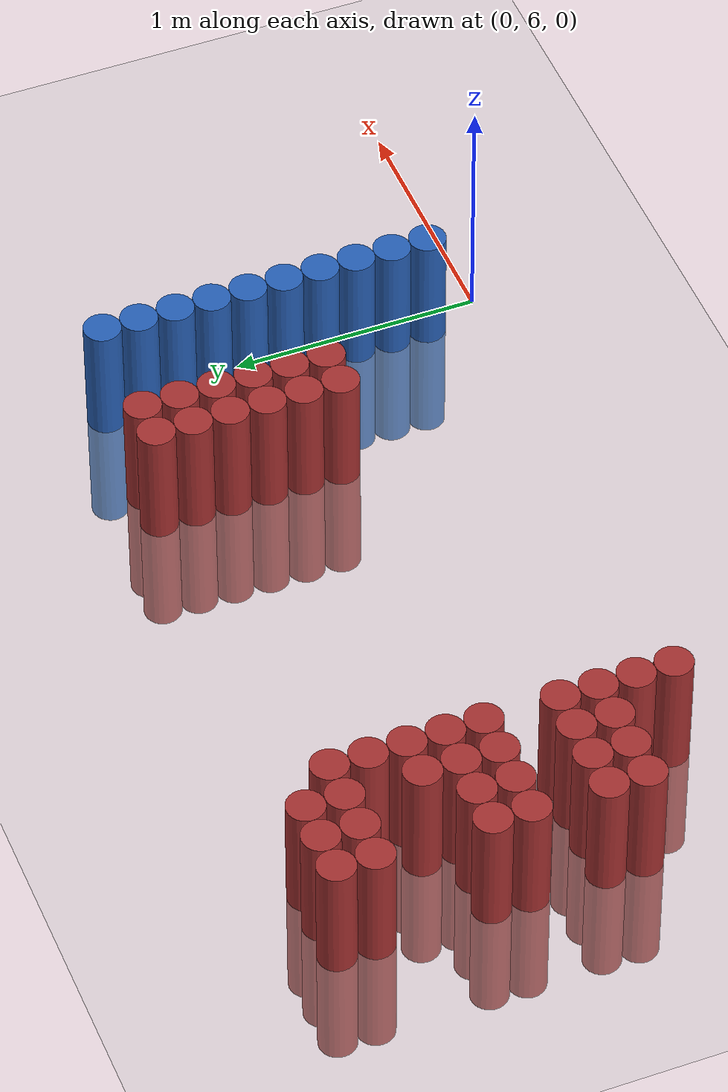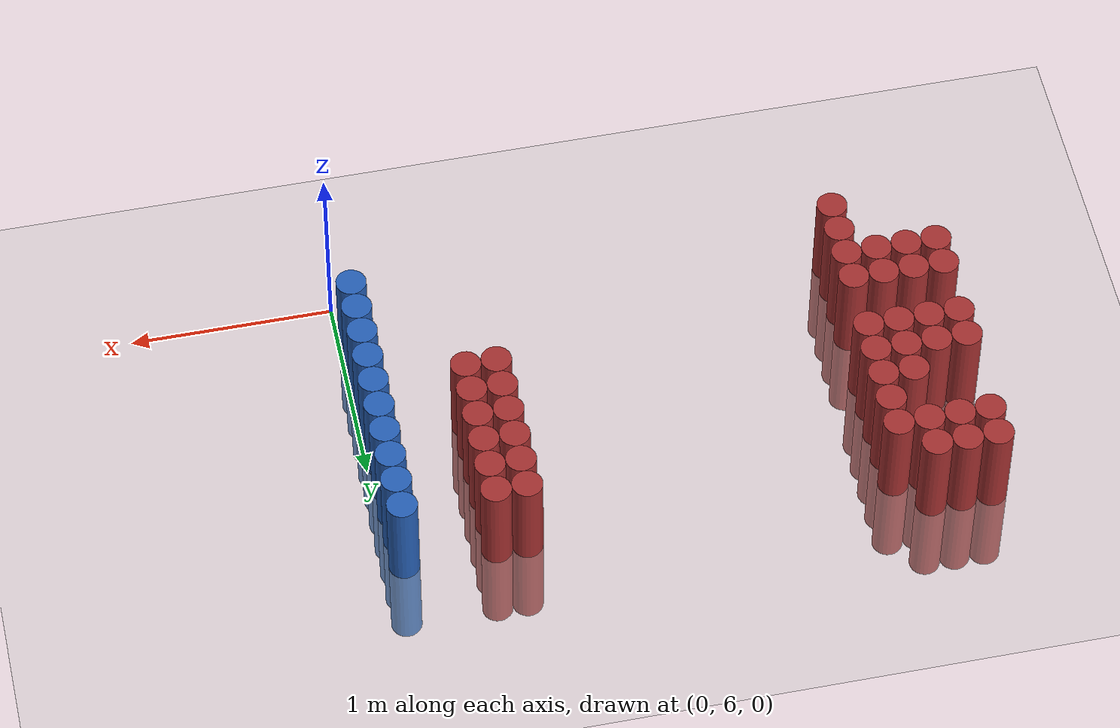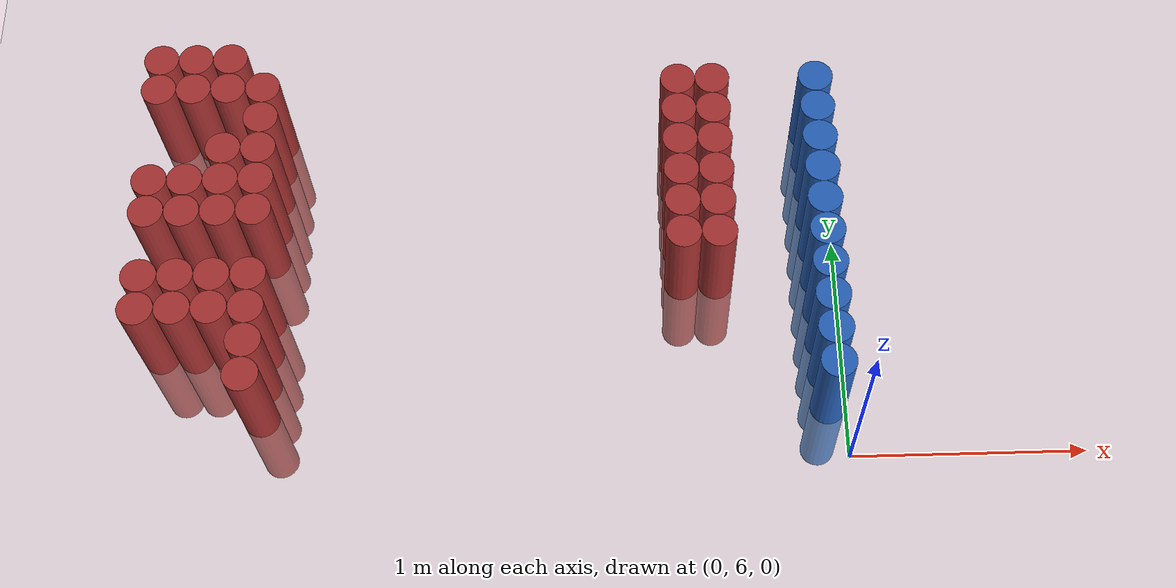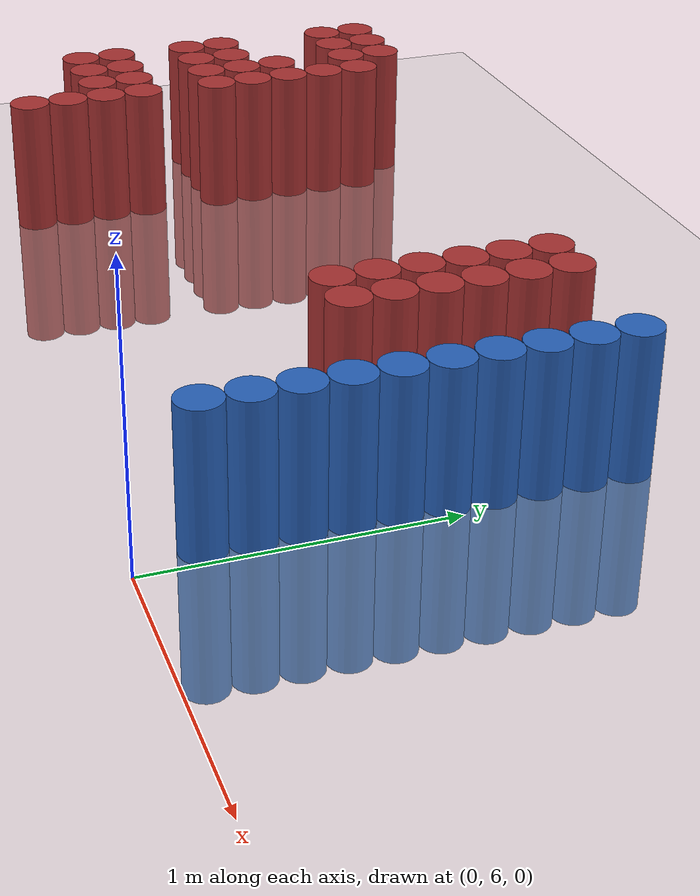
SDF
<sdf version="1.6">
 <world name="default">
  <model name="ground_plane">
   <static>1</static>
   <link name="link">
    <collision name="collision">
     <geometry><plane><normal>0 0 1</normal><size>100 100</size></plane></geometry>
     <surface><friction><ode><mu>100</mu><mu2>50</mu2></ode></friction></surface>
    </collision>
    <visual name="visual">
     <cast_shadows>0</cast_shadows>
     <geometry><plane><normal>0 0 1</normal><size>100 100</size></plane></geometry>
     <material>
      <script><uri>file://media/materials/scripts/gazebo.material</uri><name>Gazebo/Grey</name></script>
     </material>
    </visual>
   </link>
  </model>
  <model name="unit_cylinder_224">
   <static>1</static>
   <pose>-2.925000 6.525000 0.000000 0.000000 0.000000 0.000000</pose>
   <link name="link">
    <inertial>
     <mass>1</mass>
     <inertia><ixx>0.145833</ixx><ixy>0</ixy><ixz>0</ixz><iyy>0.145833</iyy><iyz>0</iyz><izz>0.125</izz></inertia>
    </inertial>
    <collision name="collision">
     <geometry><cylinder><radius>0.075000</radius><length>1</length></cylinder></geometry>
    </collision>
    <visual name="visual">
     <geometry><cylinder><radius>0.075000</radius><length>1</length></cylinder></geometry>
     <material>
      <ambient>0.648000 0.192000 0.192000 1</ambient>
      <diffuse>0.648000 0.192000 0.192000 1</diffuse>
     </material>
     <material>
      <script><name>Gazebo/Grey</name><uri>file://media/materials/scripts/gazebo.material</uri></script>
     </material>
    </visual>
   </link>
  </model>
  <model name="unit_cylinder_225">
   <static>1</static>
   <pose>-2.925000 6.675000 0.000000 0.000000 0.000000 0.000000</pose>
   <link name="link">
    <inertial>
     <mass>1</mass>
     <inertia><ixx>0.145833</ixx><ixy>0</ixy><ixz>0</ixz><iyy>0.145833</iyy><iyz>0</iyz><izz>0.125</izz></inertia>
    </inertial>
    <collision name="collision">
     <geometry><cylinder><radius>0.075000</radius><length>1</length></cylinder></geometry>
    </collision>
    <visual name="visual">
     <geometry><cylinder><radius>0.075000</radius><length>1</length></cylinder></geometry>
     <material>
      <ambient>0.648000 0.192000 0.192000 1</ambient>
      <diffuse>0.648000 0.192000 0.192000 1</diffuse>
     </material>
     <material>
      <script><name>Gazebo/Grey</name><uri>file://media/materials/scripts/gazebo.material</uri></script>
     </material>
    </visual>
   </link>
  </model>
  <model name="unit_cylinder_226">
   <static>1</static>
   <pose>-2.925000 6.975000 0.000000 0.000000 0.000000 0.000000</pose>
   <link name="link">
    <inertial>
     <mass>1</mass>
     <inertia><ixx>0.145833</ixx><ixy>0</ixy><ixz>0</ixz><iyy>0.145833</iyy><iyz>0</iyz><izz>0.125</izz></inertia>
    </inertial>
    <collision name="collision">
     <geometry><cylinder><radius>0.075000</radius><length>1</length></cylinder></geometry>
    </collision>
    <visual name="visual">
     <geometry><cylinder><radius>0.075000</radius><length>1</length></cylinder></geometry>
     <material>
      <ambient>0.648000 0.192000 0.192000 1</ambient>
      <diffuse>0.648000 0.192000 0.192000 1</diffuse>
     </material>
     <material>
      <script><name>Gazebo/Grey</name><uri>file://media/materials/scripts/gazebo.material</uri></script>
     </material>
    </visual>
   </link>
  </model>
  <model name="unit_cylinder_227">
   <static>1</static>
   <pose>-2.925000 7.125000 0.000000 0.000000 0.000000 0.000000</pose>
   <link name="link">
    <inertial>
     <mass>1</mass>
     <inertia><ixx>0.145833</ixx><ixy>0</ixy><ixz>0</ixz><iyy>0.145833</iyy><iyz>0</iyz><izz>0.125</izz></inertia>
    </inertial>
    <collision name="collision">
     <geometry><cylinder><radius>0.075000</radius><length>1</length></cylinder></geometry>
    </collision>
    <visual name="visual">
     <geometry><cylinder><radius>0.075000</radius><length>1</length></cylinder></geometry>
     <material>
      <ambient>0.648000 0.192000 0.192000 1</ambient>
      <diffuse>0.648000 0.192000 0.192000 1</diffuse>
     </material>
     <material>
      <script><name>Gazebo/Grey</name><uri>file://media/materials/scripts/gazebo.material</uri></script>
     </material>
    </visual>
   </link>
  </model>
  <model name="unit_cylinder_228">
   <static>1</static>
   <pose>-2.925000 7.575000 0.000000 0.000000 0.000000 0.000000</pose>
   <link name="link">
    <inertial>
     <mass>1</mass>
     <inertia><ixx>0.145833</ixx><ixy>0</ixy><ixz>0</ixz><iyy>0.145833</iyy><iyz>0</iyz><izz>0.125</izz></inertia>
    </inertial>
    <collision name="collision">
     <geometry><cylinder><radius>0.075000</radius><length>1</length></cylinder></geometry>
    </collision>
    <visual name="visual">
     <geometry><cylinder><radius>0.075000</radius><length>1</length></cylinder></geometry>
     <material>
      <ambient>0.648000 0.192000 0.192000 1</ambient>
      <diffuse>0.648000 0.192000 0.192000 1</diffuse>
     </material>
     <material>
      <script><name>Gazebo/Grey</name><uri>file://media/materials/scripts/gazebo.material</uri></script>
     </material>
    </visual>
   </link>
  </model>
  <model name="unit_cylinder_229">
   <static>1</static>
   <pose>-2.925000 7.725000 0.000000 0.000000 0.000000 0.000000</pose>
   <link name="link">
    <inertial>
     <mass>1</mass>
     <inertia><ixx>0.145833</ixx><ixy>0</ixy><ixz>0</ixz><iyy>0.145833</iyy><iyz>0</iyz><izz>0.125</izz></inertia>
    </inertial>
    <collision name="collision">
     <geometry><cylinder><radius>0.075000</radius><length>1</length></cylinder></geometry>
    </collision>
    <visual name="visual">
     <geometry><cylinder><radius>0.075000</radius><length>1</length></cylinder></geometry>
     <material>
      <ambient>0.648000 0.192000 0.192000 1</ambient>
      <diffuse>0.648000 0.192000 0.192000 1</diffuse>
     </material>
     <material>
      <script><name>Gazebo/Grey</name><uri>file://media/materials/scripts/gazebo.material</uri></script>
     </material>
    </visual>
   </link>
  </model>
  <model name="unit_cylinder_236">
   <static>1</static>
   <pose>-2.775000 6.525000 0.000000 0.000000 0.000000 0.000000</pose>
   <link name="link">
    <inertial>
     <mass>1</mass>
     <inertia><ixx>0.145833</ixx><ixy>0</ixy><ixz>0</ixz><iyy>0.145833</iyy><iyz>0</iyz><izz>0.125</izz></inertia>
    </inertial>
    <collision name="collision">
     <geometry><cylinder><radius>0.075000</radius><length>1</length></cylinder></geometry>
    </collision>
    <visual name="visual">
     <geometry><cylinder><radius>0.075000</radius><length>1</length></cylinder></geometry>
     <material>
      <ambient>0.648000 0.192000 0.192000 1</ambient>
      <diffuse>0.648000 0.192000 0.192000 1</diffuse>
     </material>
     <material>
      <script><name>Gazebo/Grey</name><uri>file://media/materials/scripts/gazebo.material</uri></script>
     </material>
    </visual>
   </link>
  </model>
  <model name="unit_cylinder_237">
   <static>1</static>
   <pose>-2.775000 6.675000 0.000000 0.000000 0.000000 0.000000</pose>
   <link name="link">
    <inertial>
     <mass>1</mass>
     <inertia><ixx>0.145833</ixx><ixy>0</ixy><ixz>0</ixz><iyy>0.145833</iyy><iyz>0</iyz><izz>0.125</izz></inertia>
    </inertial>
    <collision name="collision">
     <geometry><cylinder><radius>0.075000</radius><length>1</length></cylinder></geometry>
    </collision>
    <visual name="visual">
     <geometry><cylinder><radius>0.075000</radius><length>1</length></cylinder></geometry>
     <material>
      <ambient>0.648000 0.192000 0.192000 1</ambient>
      <diffuse>0.648000 0.192000 0.192000 1</diffuse>
     </material>
     <material>
      <script><name>Gazebo/Grey</name><uri>file://media/materials/scripts/gazebo.material</uri></script>
     </material>
    </visual>
   </link>
  </model>
  <model name="unit_cylinder_238">
   <static>1</static>
   <pose>-2.775000 6.975000 0.000000 0.000000 0.000000 0.000000</pose>
   <link name="link">
    <inertial>
     <mass>1</mass>
     <inertia><ixx>0.145833</ixx><ixy>0</ixy><ixz>0</ixz><iyy>0.145833</iyy><iyz>0</iyz><izz>0.125</izz></inertia>
    </inertial>
    <collision name="collision">
     <geometry><cylinder><radius>0.075000</radius><length>1</length></cylinder></geometry>
    </collision>
    <visual name="visual">
     <geometry><cylinder><radius>0.075000</radius><length>1</length></cylinder></geometry>
     <material>
      <ambient>0.648000 0.192000 0.192000 1</ambient>
      <diffuse>0.648000 0.192000 0.192000 1</diffuse>
     </material>
     <material>
      <script><name>Gazebo/Grey</name><uri>file://media/materials/scripts/gazebo.material</uri></script>
     </material>
    </visual>
   </link>
  </model>
  <model name="unit_cylinder_239">
   <static>1</static>
   <pose>-2.775000 7.125000 0.000000 0.000000 0.000000 0.000000</pose>
   <link name="link">
    <inertial>
     <mass>1</mass>
     <inertia><ixx>0.145833</ixx><ixy>0</ixy><ixz>0</ixz><iyy>0.145833</iyy><iyz>0</iyz><izz>0.125</izz></inertia>
    </inertial>
    <collision name="collision">
     <geometry><cylinder><radius>0.075000</radius><length>1</length></cylinder></geometry>
    </collision>
    <visual name="visual">
     <geometry><cylinder><radius>0.075000</radius><length>1</length></cylinder></geometry>
     <material>
      <ambient>0.648000 0.192000 0.192000 1</ambient>
      <diffuse>0.648000 0.192000 0.192000 1</diffuse>
     </material>
     <material>
      <script><name>Gazebo/Grey</name><uri>file://media/materials/scripts/gazebo.material</uri></script>
     </material>
    </visual>
   </link>
  </model>
  <model name="unit_cylinder_240">
   <static>1</static>
   <pose>-2.775000 7.575000 0.000000 0.000000 0.000000 0.000000</pose>
   <link name="link">
    <inertial>
     <mass>1</mass>
     <inertia><ixx>0.145833</ixx><ixy>0</ixy><ixz>0</ixz><iyy>0.145833</iyy><iyz>0</iyz><izz>0.125</izz></inertia>
    </inertial>
    <collision name="collision">
     <geometry><cylinder><radius>0.075000</radius><length>1</length></cylinder></geometry>
    </collision>
    <visual name="visual">
     <geometry><cylinder><radius>0.075000</radius><length>1</length></cylinder></geometry>
     <material>
      <ambient>0.648000 0.192000 0.192000 1</ambient>
      <diffuse>0.648000 0.192000 0.192000 1</diffuse>
     </material>
     <material>
      <script><name>Gazebo/Grey</name><uri>file://media/materials/scripts/gazebo.material</uri></script>
     </material>
    </visual>
   </link>
  </model>
  <model name="unit_cylinder_241">
   <static>1</static>
   <pose>-2.775000 7.725000 0.000000 0.000000 0.000000 0.000000</pose>
   <link name="link">
    <inertial>
     <mass>1</mass>
     <inertia><ixx>0.145833</ixx><ixy>0</ixy><ixz>0</ixz><iyy>0.145833</iyy><iyz>0</iyz><izz>0.125</izz></inertia>
    </inertial>
    <collision name="collision">
     <geometry><cylinder><radius>0.075000</radius><length>1</length></cylinder></geometry>
    </collision>
    <visual name="visual">
     <geometry><cylinder><radius>0.075000</radius><length>1</length></cylinder></geometry>
     <material>
      <ambient>0.648000 0.192000 0.192000 1</ambient>
      <diffuse>0.648000 0.192000 0.192000 1</diffuse>
     </material>
     <material>
      <script><name>Gazebo/Grey</name><uri>file://media/materials/scripts/gazebo.material</uri></script>
     </material>
    </visual>
   </link>
  </model>
  <model name="unit_cylinder_248">
   <static>1</static>
   <pose>-2.625000 6.525000 0.000000 0.000000 0.000000 0.000000</pose>
   <link name="link">
    <inertial>
     <mass>1</mass>
     <inertia><ixx>0.145833</ixx><ixy>0</ixy><ixz>0</ixz><iyy>0.145833</iyy><iyz>0</iyz><izz>0.125</izz></inertia>
    </inertial>
    <collision name="collision">
     <geometry><cylinder><radius>0.075000</radius><length>1</length></cylinder></geometry>
    </collision>
    <visual name="visual">
     <geometry><cylinder><radius>0.075000</radius><length>1</length></cylinder></geometry>
     <material>
      <ambient>0.648000 0.192000 0.192000 1</ambient>
      <diffuse>0.648000 0.192000 0.192000 1</diffuse>
     </material>
     <material>
      <script><name>Gazebo/Grey</name><uri>file://media/materials/scripts/gazebo.material</uri></script>
     </material>
    </visual>
   </link>
  </model>
  <model name="unit_cylinder_249">
   <static>1</static>
   <pose>-2.625000 6.675000 0.000000 0.000000 0.000000 0.000000</pose>
   <link name="link">
    <inertial>
     <mass>1</mass>
     <inertia><ixx>0.145833</ixx><ixy>0</ixy><ixz>0</ixz><iyy>0.145833</iyy><iyz>0</iyz><izz>0.125</izz></inertia>
    </inertial>
    <collision name="collision">
     <geometry><cylinder><radius>0.075000</radius><length>1</length></cylinder></geometry>
    </collision>
    <visual name="visual">
     <geometry><cylinder><radius>0.075000</radius><length>1</length></cylinder></geometry>
     <material>
      <ambient>0.648000 0.192000 0.192000 1</ambient>
      <diffuse>0.648000 0.192000 0.192000 1</diffuse>
     </material>
     <material>
      <script><name>Gazebo/Grey</name><uri>file://media/materials/scripts/gazebo.material</uri></script>
     </material>
    </visual>
   </link>
  </model>
  <model name="unit_cylinder_250">
   <static>1</static>
   <pose>-2.625000 6.975000 0.000000 0.000000 0.000000 0.000000</pose>
   <link name="link">
    <inertial>
     <mass>1</mass>
     <inertia><ixx>0.145833</ixx><ixy>0</ixy><ixz>0</ixz><iyy>0.145833</iyy><iyz>0</iyz><izz>0.125</izz></inertia>
    </inertial>
    <collision name="collision">
     <geometry><cylinder><radius>0.075000</radius><length>1</length></cylinder></geometry>
    </collision>
    <visual name="visual">
     <geometry><cylinder><radius>0.075000</radius><length>1</length></cylinder></geometry>
     <material>
      <ambient>0.648000 0.192000 0.192000 1</ambient>
      <diffuse>0.648000 0.192000 0.192000 1</diffuse>
     </material>
     <material>
      <script><name>Gazebo/Grey</name><uri>file://media/materials/scripts/gazebo.material</uri></script>
     </material>
    </visual>
   </link>
  </model>
  <model name="unit_cylinder_251">
   <static>1</static>
   <pose>-2.625000 7.125000 0.000000 0.000000 0.000000 0.000000</pose>
   <link name="link">
    <inertial>
     <mass>1</mass>
     <inertia><ixx>0.145833</ixx><ixy>0</ixy><ixz>0</ixz><iyy>0.145833</iyy><iyz>0</iyz><izz>0.125</izz></inertia>
    </inertial>
    <collision name="collision">
     <geometry><cylinder><radius>0.075000</radius><length>1</length></cylinder></geometry>
    </collision>
    <visual name="visual">
     <geometry><cylinder><radius>0.075000</radius><length>1</length></cylinder></geometry>
     <material>
      <ambient>0.648000 0.192000 0.192000 1</ambient>
      <diffuse>0.648000 0.192000 0.192000 1</diffuse>
     </material>
     <material>
      <script><name>Gazebo/Grey</name><uri>file://media/materials/scripts/gazebo.material</uri></script>
     </material>
    </visual>
   </link>
  </model>
  <model name="unit_cylinder_252">
   <static>1</static>
   <pose>-2.625000 7.275000 0.000000 0.000000 0.000000 0.000000</pose>
   <link name="link">
    <inertial>
     <mass>1</mass>
     <inertia><ixx>0.145833</ixx><ixy>0</ixy><ixz>0</ixz><iyy>0.145833</iyy><iyz>0</iyz><izz>0.125</izz></inertia>
    </inertial>
    <collision name="collision">
     <geometry><cylinder><radius>0.075000</radius><length>1</length></cylinder></geometry>
    </collision>
    <visual name="visual">
     <geometry><cylinder><radius>0.075000</radius><length>1</length></cylinder></geometry>
     <material>
      <ambient>0.648000 0.192000 0.192000 1</ambient>
      <diffuse>0.648000 0.192000 0.192000 1</diffuse>
     </material>
     <material>
      <script><name>Gazebo/Grey</name><uri>file://media/materials/scripts/gazebo.material</uri></script>
     </material>
    </visual>
   </link>
  </model>
  <model name="unit_cylinder_253">
   <static>1</static>
   <pose>-2.625000 7.575000 0.000000 0.000000 0.000000 0.000000</pose>
   <link name="link">
    <inertial>
     <mass>1</mass>
     <inertia><ixx>0.145833</ixx><ixy>0</ixy><ixz>0</ixz><iyy>0.145833</iyy><iyz>0</iyz><izz>0.125</izz></inertia>
    </inertial>
    <collision name="collision">
     <geometry><cylinder><radius>0.075000</radius><length>1</length></cylinder></geometry>
    </collision>
    <visual name="visual">
     <geometry><cylinder><radius>0.075000</radius><length>1</length></cylinder></geometry>
     <material>
      <ambient>0.648000 0.192000 0.192000 1</ambient>
      <diffuse>0.648000 0.192000 0.192000 1</diffuse>
     </material>
     <material>
      <script><name>Gazebo/Grey</name><uri>file://media/materials/scripts/gazebo.material</uri></script>
     </material>
    </visual>
   </link>
  </model>
  <model name="unit_cylinder_254">
   <static>1</static>
   <pose>-2.625000 7.725000 0.000000 0.000000 0.000000 0.000000</pose>
   <link name="link">
    <inertial>
     <mass>1</mass>
     <inertia><ixx>0.145833</ixx><ixy>0</ixy><ixz>0</ixz><iyy>0.145833</iyy><iyz>0</iyz><izz>0.125</izz></inertia>
    </inertial>
    <collision name="collision">
     <geometry><cylinder><radius>0.075000</radius><length>1</length></cylinder></geometry>
    </collision>
    <visual name="visual">
     <geometry><cylinder><radius>0.075000</radius><length>1</length></cylinder></geometry>
     <material>
      <ambient>0.648000 0.192000 0.192000 1</ambient>
      <diffuse>0.648000 0.192000 0.192000 1</diffuse>
     </material>
     <material>
      <script><name>Gazebo/Grey</name><uri>file://media/materials/scripts/gazebo.material</uri></script>
     </material>
    </visual>
   </link>
  </model>
  <model name="unit_cylinder_261">
   <static>1</static>
   <pose>-2.475000 6.225000 0.000000 0.000000 0.000000 0.000000</pose>
   <link name="link">
    <inertial>
     <mass>1</mass>
     <inertia><ixx>0.145833</ixx><ixy>0</ixy><ixz>0</ixz><iyy>0.145833</iyy><iyz>0</iyz><izz>0.125</izz></inertia>
    </inertial>
    <collision name="collision">
     <geometry><cylinder><radius>0.075000</radius><length>1</length></cylinder></geometry>
    </collision>
    <visual name="visual">
     <geometry><cylinder><radius>0.075000</radius><length>1</length></cylinder></geometry>
     <material>
      <ambient>0.648000 0.192000 0.192000 1</ambient>
      <diffuse>0.648000 0.192000 0.192000 1</diffuse>
     </material>
     <material>
      <script><name>Gazebo/Grey</name><uri>file://media/materials/scripts/gazebo.material</uri></script>
     </material>
    </visual>
   </link>
  </model>
  <model name="unit_cylinder_262">
   <static>1</static>
   <pose>-2.475000 6.375000 0.000000 0.000000 0.000000 0.000000</pose>
   <link name="link">
    <inertial>
     <mass>1</mass>
     <inertia><ixx>0.145833</ixx><ixy>0</ixy><ixz>0</ixz><iyy>0.145833</iyy><iyz>0</iyz><izz>0.125</izz></inertia>
    </inertial>
    <collision name="collision">
     <geometry><cylinder><radius>0.075000</radius><length>1</length></cylinder></geometry>
    </collision>
    <visual name="visual">
     <geometry><cylinder><radius>0.075000</radius><length>1</length></cylinder></geometry>
     <material>
      <ambient>0.648000 0.192000 0.192000 1</ambient>
      <diffuse>0.648000 0.192000 0.192000 1</diffuse>
     </material>
     <material>
      <script><name>Gazebo/Grey</name><uri>file://media/materials/scripts/gazebo.material</uri></script>
     </material>
    </visual>
   </link>
  </model>
  <model name="unit_cylinder_263">
   <static>1</static>
   <pose>-2.475000 6.525000 0.000000 0.000000 0.000000 0.000000</pose>
   <link name="link">
    <inertial>
     <mass>1</mass>
     <inertia><ixx>0.145833</ixx><ixy>0</ixy><ixz>0</ixz><iyy>0.145833</iyy><iyz>0</iyz><izz>0.125</izz></inertia>
    </inertial>
    <collision name="collision">
     <geometry><cylinder><radius>0.075000</radius><length>1</length></cylinder></geometry>
    </collision>
    <visual name="visual">
     <geometry><cylinder><radius>0.075000</radius><length>1</length></cylinder></geometry>
     <material>
      <ambient>0.648000 0.192000 0.192000 1</ambient>
      <diffuse>0.648000 0.192000 0.192000 1</diffuse>
     </material>
     <material>
      <script><name>Gazebo/Grey</name><uri>file://media/materials/scripts/gazebo.material</uri></script>
     </material>
    </visual>
   </link>
  </model>
  <model name="unit_cylinder_264">
   <static>1</static>
   <pose>-2.475000 6.675000 0.000000 0.000000 0.000000 0.000000</pose>
   <link name="link">
    <inertial>
     <mass>1</mass>
     <inertia><ixx>0.145833</ixx><ixy>0</ixy><ixz>0</ixz><iyy>0.145833</iyy><iyz>0</iyz><izz>0.125</izz></inertia>
    </inertial>
    <collision name="collision">
     <geometry><cylinder><radius>0.075000</radius><length>1</length></cylinder></geometry>
    </collision>
    <visual name="visual">
     <geometry><cylinder><radius>0.075000</radius><length>1</length></cylinder></geometry>
     <material>
      <ambient>0.648000 0.192000 0.192000 1</ambient>
      <diffuse>0.648000 0.192000 0.192000 1</diffuse>
     </material>
     <material>
      <script><name>Gazebo/Grey</name><uri>file://media/materials/scripts/gazebo.material</uri></script>
     </material>
    </visual>
   </link>
  </model>
  <model name="unit_cylinder_265">
   <static>1</static>
   <pose>-2.475000 6.975000 0.000000 0.000000 0.000000 0.000000</pose>
   <link name="link">
    <inertial>
     <mass>1</mass>
     <inertia><ixx>0.145833</ixx><ixy>0</ixy><ixz>0</ixz><iyy>0.145833</iyy><iyz>0</iyz><izz>0.125</izz></inertia>
    </inertial>
    <collision name="collision">
     <geometry><cylinder><radius>0.075000</radius><length>1</length></cylinder></geometry>
    </collision>
    <visual name="visual">
     <geometry><cylinder><radius>0.075000</radius><length>1</length></cylinder></geometry>
     <material>
      <ambient>0.648000 0.192000 0.192000 1</ambient>
      <diffuse>0.648000 0.192000 0.192000 1</diffuse>
     </material>
     <material>
      <script><name>Gazebo/Grey</name><uri>file://media/materials/scripts/gazebo.material</uri></script>
     </material>
    </visual>
   </link>
  </model>
  <model name="unit_cylinder_266">
   <static>1</static>
   <pose>-2.475000 7.125000 0.000000 0.000000 0.000000 0.000000</pose>
   <link name="link">
    <inertial>
     <mass>1</mass>
     <inertia><ixx>0.145833</ixx><ixy>0</ixy><ixz>0</ixz><iyy>0.145833</iyy><iyz>0</iyz><izz>0.125</izz></inertia>
    </inertial>
    <collision name="collision">
     <geometry><cylinder><radius>0.075000</radius><length>1</length></cylinder></geometry>
    </collision>
    <visual name="visual">
     <geometry><cylinder><radius>0.075000</radius><length>1</length></cylinder></geometry>
     <material>
      <ambient>0.648000 0.192000 0.192000 1</ambient>
      <diffuse>0.648000 0.192000 0.192000 1</diffuse>
     </material>
     <material>
      <script><name>Gazebo/Grey</name><uri>file://media/materials/scripts/gazebo.material</uri></script>
     </material>
    </visual>
   </link>
  </model>
  <model name="unit_cylinder_267">
   <static>1</static>
   <pose>-2.475000 7.275000 0.000000 0.000000 0.000000 0.000000</pose>
   <link name="link">
    <inertial>
     <mass>1</mass>
     <inertia><ixx>0.145833</ixx><ixy>0</ixy><ixz>0</ixz><iyy>0.145833</iyy><iyz>0</iyz><izz>0.125</izz></inertia>
    </inertial>
    <collision name="collision">
     <geometry><cylinder><radius>0.075000</radius><length>1</length></cylinder></geometry>
    </collision>
    <visual name="visual">
     <geometry><cylinder><radius>0.075000</radius><length>1</length></cylinder></geometry>
     <material>
      <ambient>0.648000 0.192000 0.192000 1</ambient>
      <diffuse>0.648000 0.192000 0.192000 1</diffuse>
     </material>
     <material>
      <script><name>Gazebo/Grey</name><uri>file://media/materials/scripts/gazebo.material</uri></script>
     </material>
    </visual>
   </link>
  </model>
  <model name="unit_cylinder_268">
   <static>1</static>
   <pose>-2.475000 7.425000 0.000000 0.000000 0.000000 0.000000</pose>
   <link name="link">
    <inertial>
     <mass>1</mass>
     <inertia><ixx>0.145833</ixx><ixy>0</ixy><ixz>0</ixz><iyy>0.145833</iyy><iyz>0</iyz><izz>0.125</izz></inertia>
    </inertial>
    <collision name="collision">
     <geometry><cylinder><radius>0.075000</radius><length>1</length></cylinder></geometry>
    </collision>
    <visual name="visual">
     <geometry><cylinder><radius>0.075000</radius><length>1</length></cylinder></geometry>
     <material>
      <ambient>0.648000 0.192000 0.192000 1</ambient>
      <diffuse>0.648000 0.192000 0.192000 1</diffuse>
     </material>
     <material>
      <script><name>Gazebo/Grey</name><uri>file://media/materials/scripts/gazebo.material</uri></script>
     </material>
    </visual>
   </link>
  </model>
  <model name="unit_cylinder_269">
   <static>1</static>
   <pose>-2.475000 7.575000 0.000000 0.000000 0.000000 0.000000</pose>
   <link name="link">
    <inertial>
     <mass>1</mass>
     <inertia><ixx>0.145833</ixx><ixy>0</ixy><ixz>0</ixz><iyy>0.145833</iyy><iyz>0</iyz><izz>0.125</izz></inertia>
    </inertial>
    <collision name="collision">
     <geometry><cylinder><radius>0.075000</radius><length>1</length></cylinder></geometry>
    </collision>
    <visual name="visual">
     <geometry><cylinder><radius>0.075000</radius><length>1</length></cylinder></geometry>
     <material>
      <ambient>0.648000 0.192000 0.192000 1</ambient>
      <diffuse>0.648000 0.192000 0.192000 1</diffuse>
     </material>
     <material>
      <script><name>Gazebo/Grey</name><uri>file://media/materials/scripts/gazebo.material</uri></script>
     </material>
    </visual>
   </link>
  </model>
  <model name="unit_cylinder_286">
   <static>1</static>
   <pose>-0.675000 6.825000 0.000000 0.000000 0.000000 0.000000</pose>
   <link name="link">
    <inertial>
     <mass>1</mass>
     <inertia><ixx>0.145833</ixx><ixy>0</ixy><ixz>0</ixz><iyy>0.145833</iyy><iyz>0</iyz><izz>0.125</izz></inertia>
    </inertial>
    <collision name="collision">
     <geometry><cylinder><radius>0.075000</radius><length>1</length></cylinder></geometry>
    </collision>
    <visual name="visual">
     <geometry><cylinder><radius>0.075000</radius><length>1</length></cylinder></geometry>
     <material>
      <ambient>0.648000 0.192000 0.192000 1</ambient>
      <diffuse>0.648000 0.192000 0.192000 1</diffuse>
     </material>
     <material>
      <script><name>Gazebo/Grey</name><uri>file://media/materials/scripts/gazebo.material</uri></script>
     </material>
    </visual>
   </link>
  </model>
  <model name="unit_cylinder_287">
   <static>1</static>
   <pose>-0.675000 6.975000 0.000000 0.000000 0.000000 0.000000</pose>
   <link name="link">
    <inertial>
     <mass>1</mass>
     <inertia><ixx>0.145833</ixx><ixy>0</ixy><ixz>0</ixz><iyy>0.145833</iyy><iyz>0</iyz><izz>0.125</izz></inertia>
    </inertial>
    <collision name="collision">
     <geometry><cylinder><radius>0.075000</radius><length>1</length></cylinder></geometry>
    </collision>
    <visual name="visual">
     <geometry><cylinder><radius>0.075000</radius><length>1</length></cylinder></geometry>
     <material>
      <ambient>0.648000 0.192000 0.192000 1</ambient>
      <diffuse>0.648000 0.192000 0.192000 1</diffuse>
     </material>
     <material>
      <script><name>Gazebo/Grey</name><uri>file://media/materials/scripts/gazebo.material</uri></script>
     </material>
    </visual>
   </link>
  </model>
  <model name="unit_cylinder_288">
   <static>1</static>
   <pose>-0.675000 7.125000 0.000000 0.000000 0.000000 0.000000</pose>
   <link name="link">
    <inertial>
     <mass>1</mass>
     <inertia><ixx>0.145833</ixx><ixy>0</ixy><ixz>0</ixz><iyy>0.145833</iyy><iyz>0</iyz><izz>0.125</izz></inertia>
    </inertial>
    <collision name="collision">
     <geometry><cylinder><radius>0.075000</radius><length>1</length></cylinder></geometry>
    </collision>
    <visual name="visual">
     <geometry><cylinder><radius>0.075000</radius><length>1</length></cylinder></geometry>
     <material>
      <ambient>0.648000 0.192000 0.192000 1</ambient>
      <diffuse>0.648000 0.192000 0.192000 1</diffuse>
     </material>
     <material>
      <script><name>Gazebo/Grey</name><uri>file://media/materials/scripts/gazebo.material</uri></script>
     </material>
    </visual>
   </link>
  </model>
  <model name="unit_cylinder_289">
   <static>1</static>
   <pose>-0.675000 7.275000 0.000000 0.000000 0.000000 0.000000</pose>
   <link name="link">
    <inertial>
     <mass>1</mass>
     <inertia><ixx>0.145833</ixx><ixy>0</ixy><ixz>0</ixz><iyy>0.145833</iyy><iyz>0</iyz><izz>0.125</izz></inertia>
    </inertial>
    <collision name="collision">
     <geometry><cylinder><radius>0.075000</radius><length>1</length></cylinder></geometry>
    </collision>
    <visual name="visual">
     <geometry><cylinder><radius>0.075000</radius><length>1</length></cylinder></geometry>
     <material>
      <ambient>0.648000 0.192000 0.192000 1</ambient>
      <diffuse>0.648000 0.192000 0.192000 1</diffuse>
     </material>
     <material>
      <script><name>Gazebo/Grey</name><uri>file://media/materials/scripts/gazebo.material</uri></script>
     </material>
    </visual>
   </link>
  </model>
  <model name="unit_cylinder_290">
   <static>1</static>
   <pose>-0.675000 7.425000 0.000000 0.000000 0.000000 0.000000</pose>
   <link name="link">
    <inertial>
     <mass>1</mass>
     <inertia><ixx>0.145833</ixx><ixy>0</ixy><ixz>0</ixz><iyy>0.145833</iyy><iyz>0</iyz><izz>0.125</izz></inertia>
    </inertial>
    <collision name="collision">
     <geometry><cylinder><radius>0.075000</radius><length>1</length></cylinder></geometry>
    </collision>
    <visual name="visual">
     <geometry><cylinder><radius>0.075000</radius><length>1</length></cylinder></geometry>
     <material>
      <ambient>0.648000 0.192000 0.192000 1</ambient>
      <diffuse>0.648000 0.192000 0.192000 1</diffuse>
     </material>
     <material>
      <script><name>Gazebo/Grey</name><uri>file://media/materials/scripts/gazebo.material</uri></script>
     </material>
    </visual>
   </link>
  </model>
  <model name="unit_cylinder_291">
   <static>1</static>
   <pose>-0.675000 7.575000 0.000000 0.000000 0.000000 0.000000</pose>
   <link name="link">
    <inertial>
     <mass>1</mass>
     <inertia><ixx>0.145833</ixx><ixy>0</ixy><ixz>0</ixz><iyy>0.145833</iyy><iyz>0</iyz><izz>0.125</izz></inertia>
    </inertial>
    <collision name="collision">
     <geometry><cylinder><radius>0.075000</radius><length>1</length></cylinder></geometry>
    </collision>
    <visual name="visual">
     <geometry><cylinder><radius>0.075000</radius><length>1</length></cylinder></geometry>
     <material>
      <ambient>0.648000 0.192000 0.192000 1</ambient>
      <diffuse>0.648000 0.192000 0.192000 1</diffuse>
     </material>
     <material>
      <script><name>Gazebo/Grey</name><uri>file://media/materials/scripts/gazebo.material</uri></script>
     </material>
    </visual>
   </link>
  </model>
  <model name="unit_cylinder_302">
   <static>1</static>
   <pose>-0.525000 6.825000 0.000000 0.000000 0.000000 0.000000</pose>
   <link name="link">
    <inertial>
     <mass>1</mass>
     <inertia><ixx>0.145833</ixx><ixy>0</ixy><ixz>0</ixz><iyy>0.145833</iyy><iyz>0</iyz><izz>0.125</izz></inertia>
    </inertial>
    <collision name="collision">
     <geometry><cylinder><radius>0.075000</radius><length>1</length></cylinder></geometry>
    </collision>
    <visual name="visual">
     <geometry><cylinder><radius>0.075000</radius><length>1</length></cylinder></geometry>
     <material>
      <ambient>0.648000 0.192000 0.192000 1</ambient>
      <diffuse>0.648000 0.192000 0.192000 1</diffuse>
     </material>
     <material>
      <script><name>Gazebo/Grey</name><uri>file://media/materials/scripts/gazebo.material</uri></script>
     </material>
    </visual>
   </link>
  </model>
  <model name="unit_cylinder_303">
   <static>1</static>
   <pose>-0.525000 6.975000 0.000000 0.000000 0.000000 0.000000</pose>
   <link name="link">
    <inertial>
     <mass>1</mass>
     <inertia><ixx>0.145833</ixx><ixy>0</ixy><ixz>0</ixz><iyy>0.145833</iyy><iyz>0</iyz><izz>0.125</izz></inertia>
    </inertial>
    <collision name="collision">
     <geometry><cylinder><radius>0.075000</radius><length>1</length></cylinder></geometry>
    </collision>
    <visual name="visual">
     <geometry><cylinder><radius>0.075000</radius><length>1</length></cylinder></geometry>
     <material>
      <ambient>0.648000 0.192000 0.192000 1</ambient>
      <diffuse>0.648000 0.192000 0.192000 1</diffuse>
     </material>
     <material>
      <script><name>Gazebo/Grey</name><uri>file://media/materials/scripts/gazebo.material</uri></script>
     </material>
    </visual>
   </link>
  </model>
  <model name="unit_cylinder_304">
   <static>1</static>
   <pose>-0.525000 7.125000 0.000000 0.000000 0.000000 0.000000</pose>
   <link name="link">
    <inertial>
     <mass>1</mass>
     <inertia><ixx>0.145833</ixx><ixy>0</ixy><ixz>0</ixz><iyy>0.145833</iyy><iyz>0</iyz><izz>0.125</izz></inertia>
    </inertial>
    <collision name="collision">
     <geometry><cylinder><radius>0.075000</radius><length>1</length></cylinder></geometry>
    </collision>
    <visual name="visual">
     <geometry><cylinder><radius>0.075000</radius><length>1</length></cylinder></geometry>
     <material>
      <ambient>0.648000 0.192000 0.192000 1</ambient>
      <diffuse>0.648000 0.192000 0.192000 1</diffuse>
     </material>
     <material>
      <script><name>Gazebo/Grey</name><uri>file://media/materials/scripts/gazebo.material</uri></script>
     </material>
    </visual>
   </link>
  </model>
  <model name="unit_cylinder_305">
   <static>1</static>
   <pose>-0.525000 7.275000 0.000000 0.000000 0.000000 0.000000</pose>
   <link name="link">
    <inertial>
     <mass>1</mass>
     <inertia><ixx>0.145833</ixx><ixy>0</ixy><ixz>0</ixz><iyy>0.145833</iyy><iyz>0</iyz><izz>0.125</izz></inertia>
    </inertial>
    <collision name="collision">
     <geometry><cylinder><radius>0.075000</radius><length>1</length></cylinder></geometry>
    </collision>
    <visual name="visual">
     <geometry><cylinder><radius>0.075000</radius><length>1</length></cylinder></geometry>
     <material>
      <ambient>0.648000 0.192000 0.192000 1</ambient>
      <diffuse>0.648000 0.192000 0.192000 1</diffuse>
     </material>
     <material>
      <script><name>Gazebo/Grey</name><uri>file://media/materials/scripts/gazebo.material</uri></script>
     </material>
    </visual>
   </link>
  </model>
  <model name="unit_cylinder_306">
   <static>1</static>
   <pose>-0.525000 7.425000 0.000000 0.000000 0.000000 0.000000</pose>
   <link name="link">
    <inertial>
     <mass>1</mass>
     <inertia><ixx>0.145833</ixx><ixy>0</ixy><ixz>0</ixz><iyy>0.145833</iyy><iyz>0</iyz><izz>0.125</izz></inertia>
    </inertial>
    <collision name="collision">
     <geometry><cylinder><radius>0.075000</radius><length>1</length></cylinder></geometry>
    </collision>
    <visual name="visual">
     <geometry><cylinder><radius>0.075000</radius><length>1</length></cylinder></geometry>
     <material>
      <ambient>0.648000 0.192000 0.192000 1</ambient>
      <diffuse>0.648000 0.192000 0.192000 1</diffuse>
     </material>
     <material>
      <script><name>Gazebo/Grey</name><uri>file://media/materials/scripts/gazebo.material</uri></script>
     </material>
    </visual>
   </link>
  </model>
  <model name="unit_cylinder_307">
   <static>1</static>
   <pose>-0.525000 7.575000 0.000000 0.000000 0.000000 0.000000</pose>
   <link name="link">
    <inertial>
     <mass>1</mass>
     <inertia><ixx>0.145833</ixx><ixy>0</ixy><ixz>0</ixz><iyy>0.145833</iyy><iyz>0</iyz><izz>0.125</izz></inertia>
    </inertial>
    <collision name="collision">
     <geometry><cylinder><radius>0.075000</radius><length>1</length></cylinder></geometry>
    </collision>
    <visual name="visual">
     <geometry><cylinder><radius>0.075000</radius><length>1</length></cylinder></geometry>
     <material>
      <ambient>0.648000 0.192000 0.192000 1</ambient>
      <diffuse>0.648000 0.192000 0.192000 1</diffuse>
     </material>
     <material>
      <script><name>Gazebo/Grey</name><uri>file://media/materials/scripts/gazebo.material</uri></script>
     </material>
    </visual>
   </link>
  </model>
  <model name="unit_cylinder_329">
   <static>1</static>
   <pose>-0.075000 6.225000 0.000000 0.000000 0.000000 0.000000</pose>
   <link name="link">
    <inertial>
     <mass>1</mass>
     <inertia><ixx>0.145833</ixx><ixy>0</ixy><ixz>0</ixz><iyy>0.145833</iyy><iyz>0</iyz><izz>0.125</izz></inertia>
    </inertial>
    <collision name="collision">
     <geometry><cylinder><radius>0.075000</radius><length>1</length></cylinder></geometry>
    </collision>
    <visual name="visual">
     <geometry><cylinder><radius>0.075000</radius><length>1</length></cylinder></geometry>
     <material>
      <ambient>0.152000 0.379000 0.720000 1</ambient>
      <diffuse>0.152000 0.379000 0.720000 1</diffuse>
     </material>
     <material>
      <script><name>Gazebo/Grey</name><uri>file://media/materials/scripts/gazebo.material</uri></script>
     </material>
    </visual>
   </link>
  </model>
  <model name="unit_cylinder_330">
   <static>1</static>
   <pose>-0.075000 6.375000 0.000000 0.000000 0.000000 0.000000</pose>
   <link name="link">
    <inertial>
     <mass>1</mass>
     <inertia><ixx>0.145833</ixx><ixy>0</ixy><ixz>0</ixz><iyy>0.145833</iyy><iyz>0</iyz><izz>0.125</izz></inertia>
    </inertial>
    <collision name="collision">
     <geometry><cylinder><radius>0.075000</radius><length>1</length></cylinder></geometry>
    </collision>
    <visual name="visual">
     <geometry><cylinder><radius>0.075000</radius><length>1</length></cylinder></geometry>
     <material>
      <ambient>0.152000 0.379000 0.720000 1</ambient>
      <diffuse>0.152000 0.379000 0.720000 1</diffuse>
     </material>
     <material>
      <script><name>Gazebo/Grey</name><uri>file://media/materials/scripts/gazebo.material</uri></script>
     </material>
    </visual>
   </link>
  </model>
  <model name="unit_cylinder_331">
   <static>1</static>
   <pose>-0.075000 6.525000 0.000000 0.000000 0.000000 0.000000</pose>
   <link name="link">
    <inertial>
     <mass>1</mass>
     <inertia><ixx>0.145833</ixx><ixy>0</ixy><ixz>0</ixz><iyy>0.145833</iyy><iyz>0</iyz><izz>0.125</izz></inertia>
    </inertial>
    <collision name="collision">
     <geometry><cylinder><radius>0.075000</radius><length>1</length></cylinder></geometry>
    </collision>
    <visual name="visual">
     <geometry><cylinder><radius>0.075000</radius><length>1</length></cylinder></geometry>
     <material>
      <ambient>0.152000 0.379000 0.720000 1</ambient>
      <diffuse>0.152000 0.379000 0.720000 1</diffuse>
     </material>
     <material>
      <script><name>Gazebo/Grey</name><uri>file://media/materials/scripts/gazebo.material</uri></script>
     </material>
    </visual>
   </link>
  </model>
  <model name="unit_cylinder_332">
   <static>1</static>
   <pose>-0.075000 6.675000 0.000000 0.000000 0.000000 0.000000</pose>
   <link name="link">
    <inertial>
     <mass>1</mass>
     <inertia><ixx>0.145833</ixx><ixy>0</ixy><ixz>0</ixz><iyy>0.145833</iyy><iyz>0</iyz><izz>0.125</izz></inertia>
    </inertial>
    <collision name="collision">
     <geometry><cylinder><radius>0.075000</radius><length>1</length></cylinder></geometry>
    </collision>
    <visual name="visual">
     <geometry><cylinder><radius>0.075000</radius><length>1</length></cylinder></geometry>
     <material>
      <ambient>0.152000 0.379000 0.720000 1</ambient>
      <diffuse>0.152000 0.379000 0.720000 1</diffuse>
     </material>
     <material>
      <script><name>Gazebo/Grey</name><uri>file://media/materials/scripts/gazebo.material</uri></script>
     </material>
    </visual>
   </link>
  </model>
  <model name="unit_cylinder_333">
   <static>1</static>
   <pose>-0.075000 6.825000 0.000000 0.000000 0.000000 0.000000</pose>
   <link name="link">
    <inertial>
     <mass>1</mass>
     <inertia><ixx>0.145833</ixx><ixy>0</ixy><ixz>0</ixz><iyy>0.145833</iyy><iyz>0</iyz><izz>0.125</izz></inertia>
    </inertial>
    <collision name="collision">
     <geometry><cylinder><radius>0.075000</radius><length>1</length></cylinder></geometry>
    </collision>
    <visual name="visual">
     <geometry><cylinder><radius>0.075000</radius><length>1</length></cylinder></geometry>
     <material>
      <ambient>0.152000 0.379000 0.720000 1</ambient>
      <diffuse>0.152000 0.379000 0.720000 1</diffuse>
     </material>
     <material>
      <script><name>Gazebo/Grey</name><uri>file://media/materials/scripts/gazebo.material</uri></script>
     </material>
    </visual>
   </link>
  </model>
  <model name="unit_cylinder_334">
   <static>1</static>
   <pose>-0.075000 6.975000 0.000000 0.000000 0.000000 0.000000</pose>
   <link name="link">
    <inertial>
     <mass>1</mass>
     <inertia><ixx>0.145833</ixx><ixy>0</ixy><ixz>0</ixz><iyy>0.145833</iyy><iyz>0</iyz><izz>0.125</izz></inertia>
    </inertial>
    <collision name="collision">
     <geometry><cylinder><radius>0.075000</radius><length>1</length></cylinder></geometry>
    </collision>
    <visual name="visual">
     <geometry><cylinder><radius>0.075000</radius><length>1</length></cylinder></geometry>
     <material>
      <ambient>0.152000 0.379000 0.720000 1</ambient>
      <diffuse>0.152000 0.379000 0.720000 1</diffuse>
     </material>
     <material>
      <script><name>Gazebo/Grey</name><uri>file://media/materials/scripts/gazebo.material</uri></script>
     </material>
    </visual>
   </link>
  </model>
  <model name="unit_cylinder_335">
   <static>1</static>
   <pose>-0.075000 7.125000 0.000000 0.000000 0.000000 0.000000</pose>
   <link name="link">
    <inertial>
     <mass>1</mass>
     <inertia><ixx>0.145833</ixx><ixy>0</ixy><ixz>0</ixz><iyy>0.145833</iyy><iyz>0</iyz><izz>0.125</izz></inertia>
    </inertial>
    <collision name="collision">
     <geometry><cylinder><radius>0.075000</radius><length>1</length></cylinder></geometry>
    </collision>
    <visual name="visual">
     <geometry><cylinder><radius>0.075000</radius><length>1</length></cylinder></geometry>
     <material>
      <ambient>0.152000 0.379000 0.720000 1</ambient>
      <diffuse>0.152000 0.379000 0.720000 1</diffuse>
     </material>
     <material>
      <script><name>Gazebo/Grey</name><uri>file://media/materials/scripts/gazebo.material</uri></script>
     </material>
    </visual>
   </link>
  </model>
  <model name="unit_cylinder_336">
   <static>1</static>
   <pose>-0.075000 7.275000 0.000000 0.000000 0.000000 0.000000</pose>
   <link name="link">
    <inertial>
     <mass>1</mass>
     <inertia><ixx>0.145833</ixx><ixy>0</ixy><ixz>0</ixz><iyy>0.145833</iyy><iyz>0</iyz><izz>0.125</izz></inertia>
    </inertial>
    <collision name="collision">
     <geometry><cylinder><radius>0.075000</radius><length>1</length></cylinder></geometry>
    </collision>
    <visual name="visual">
     <geometry><cylinder><radius>0.075000</radius><length>1</length></cylinder></geometry>
     <material>
      <ambient>0.152000 0.379000 0.720000 1</ambient>
      <diffuse>0.152000 0.379000 0.720000 1</diffuse>
     </material>
     <material>
      <script><name>Gazebo/Grey</name><uri>file://media/materials/scripts/gazebo.material</uri></script>
     </material>
    </visual>
   </link>
  </model>
  <model name="unit_cylinder_337">
   <static>1</static>
   <pose>-0.075000 7.425000 0.000000 0.000000 0.000000 0.000000</pose>
   <link name="link">
    <inertial>
     <mass>1</mass>
     <inertia><ixx>0.145833</ixx><ixy>0</ixy><ixz>0</ixz><iyy>0.145833</iyy><iyz>0</iyz><izz>0.125</izz></inertia>
    </inertial>
    <collision name="collision">
     <geometry><cylinder><radius>0.075000</radius><length>1</length></cylinder></geometry>
    </collision>
    <visual name="visual">
     <geometry><cylinder><radius>0.075000</radius><length>1</length></cylinder></geometry>
     <material>
      <ambient>0.152000 0.379000 0.720000 1</ambient>
      <diffuse>0.152000 0.379000 0.720000 1</diffuse>
     </material>
     <material>
      <script><name>Gazebo/Grey</name><uri>file://media/materials/scripts/gazebo.material</uri></script>
     </material>
    </visual>
   </link>
  </model>
  <model name="unit_cylinder_338">
   <static>1</static>
   <pose>-0.075000 7.575000 0.000000 0.000000 0.000000 0.000000</pose>
   <link name="link">
    <inertial>
     <mass>1</mass>
     <inertia><ixx>0.145833</ixx><ixy>0</ixy><ixz>0</ixz><iyy>0.145833</iyy><iyz>0</iyz><izz>0.125</izz></inertia>
    </inertial>
    <collision name="collision">
     <geometry><cylinder><radius>0.075000</radius><length>1</length></cylinder></geometry>
    </collision>
    <visual name="visual">
     <geometry><cylinder><radius>0.075000</radius><length>1</length></cylinder></geometry>
     <material>
      <ambient>0.152000 0.379000 0.720000 1</ambient>
      <diffuse>0.152000 0.379000 0.720000 1</diffuse>
     </material>
     <material>
      <script><name>Gazebo/Grey</name><uri>file://media/materials/scripts/gazebo.material</uri></script>
     </material>
    </visual>
   </link>
  </model>
 </world>
</sdf>
